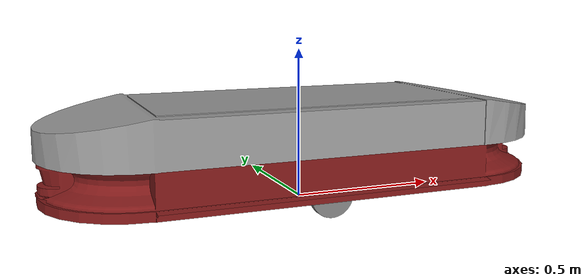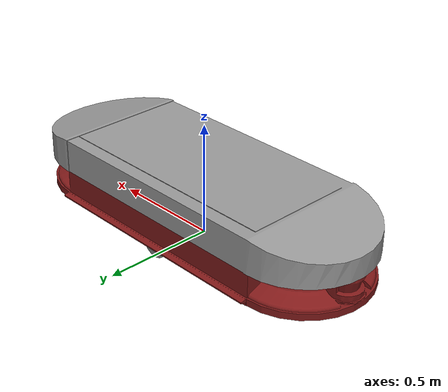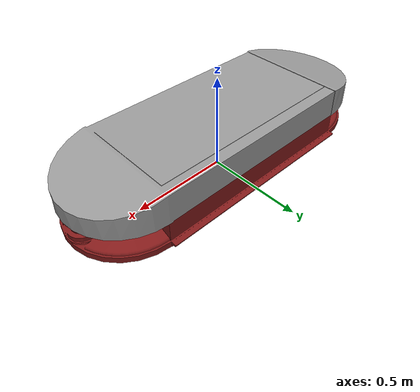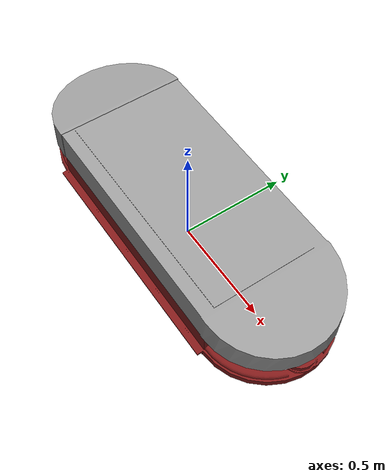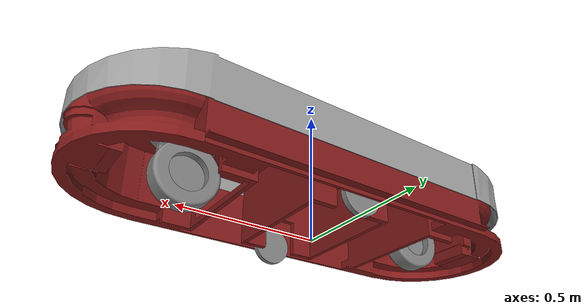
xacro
<?xml version="1.0"?>
<robot name="agvs" xmlns:xacro="http://www.ros.org/wiki/xacro">

  <!-- Import all Gazebo-customization elements, including Gazebo colors -->
  <xacro:include filename="$(find agvs_description)/urdf/agvs.gazebo" />

  <!-- Robot mechanical and motor parameters -->
  <xacro:property name="PI" value="3.1415926535897931"/>
  <xacro:property name="wheel_offset_x" value="0.479" />    <!-- x,y,z in base_footprint CS -->
  <xacro:property name="wheel_offset_y" value="0.0" />
  <xacro:property name="wheel_offset_z" value="0.110" />
  <xacro:property name="wheel_joint_damping" value="1.0" />
  <xacro:property name="wheel_joint_friction" value="1.0" />
  <xacro:property name="wheel_joint_effort_limit" value="1000.0" />
  <xacro:property name="wheel_joint_velocity_limit" value="2000.0" />
  <xacro:property name="wheel_mechanical_reduction" value="1.0" />
  <xacro:property name="motor_wheel_offset_z" value="0.110" />
  <xacro:property name="side_wheel_offset_y" value="0.267" />
  <xacro:property name="side_wheel_offset_z" value="0.070" />
  <xacro:property name="side_wheel_joint_damping" value="1.0" />
  <xacro:property name="side_wheel_joint_friction" value="1.0" />
  <!-- xacro:property name="side_wheel_offset_z" value="0.075" / -->

  <xacro:property name="steer_joint_damping" value="2.0" />
  <xacro:property name="steer_joint_friction" value="1.0" />
  <xacro:property name="steer_joint_effort_limit" value="100.0" />
  <xacro:property name="steer_joint_velocity_limit" value="100.0" />
  <xacro:property name="motor_wheel_mechanical_reduction" value="100.0" />

  <!-- Used for fixing robot to Gazebo 'base_link' -->

  <!-- BASE FOOTPRINT -->
  <!-- base_footprint is a fictitious link(frame) that is on the ground right below base_link origin,
             navigation stack depends on this frame -->
  <link name="base_footprint">
      <visual>
          <origin xyz="0 0 0" rpy="0 0 0" />
          <geometry>
             <box size="0.001 0.001 0.001" />
          </geometry>
      </visual>

  </link>

  <joint name="base_footprint_joint" type="fixed">
     <!-- NB While you would think this would make it go up, it is oddly reversed.
      This moves the joint to 0,0,0 where we want it for rviz, etc. -->
     <!-- origin xyz="0 0 -0.005" rpy="0 0 0" / -->
     <origin xyz="0 0 -0.005" rpy="0 0 0" />
     <parent link="base_footprint"/>
     <child link="base_link" />
  </joint>

  <!-- BASE_LINK (RED) -->
  <link name="base_link">
    <inertial>
      <mass value="225.0" />
      <origin xyz="0 0 0" />
      <inertia  ixx="5.0" ixy="0.0"  ixz="0.0"  iyy="5.0"  iyz="0.0"  izz="5.0" />
    </inertial>
    <visual>
       <origin xyz="0 0 0" rpy="0 0 0" />
       <geometry>
	     <mesh filename="package://agvs_description/meshes/chassis_agvs.dae"/>
       </geometry>
	   <material name="red">
	     <color rgba="0.5 0.1 0.1 1"/>
       </material>
    </visual>
    <collision>
       <origin xyz="0 0 0" rpy="0 0 0 " />
       <geometry>
         <mesh filename="package://agvs_description/meshes/chassis_agvs.dae"/>
       </geometry>
    </collision>
  </link>

  <!-- BACK MOTOR WHEEL (GREY) -->
  <link name="back_motor_wheel">
    <inertial>
      <mass value="10" />
      <origin xyz="0 0 0" />
      <inertia  ixx="0.01" ixy="0.0"  ixz="0.0"  iyy="0.01"  iyz="0.0"  izz="0.01" />
    </inertial>

    <visual>
       <origin xyz="0 0 0" rpy="0 0 0" />
       <geometry>
	      <mesh filename="package://agvs_description/meshes/motor_wheel.dae" scale="1.0 1.0 1.0"/>
       </geometry>
	   <material name="grey">
	   <color rgba="0.5 0.5 0.5 1"/>
       </material>
    </visual>
    <collision>
       <origin xyz="0 0 0" rpy="0 0 0" />
       <geometry>
	       <mesh filename="package://agvs_description/meshes/motor_wheel.dae" scale="1.0 1.0 1.0"/>
       </geometry>
    </collision>
  </link>

  <joint name="joint_back_motor_wheel" type="continuous">
    <parent link="base_link"/>
    <child link="back_motor_wheel"/>
    <origin xyz="-${wheel_offset_x} ${wheel_offset_y} ${motor_wheel_offset_z}" rpy="0 0 0" />
    <axis xyz="0 0 1" rpy="0 0 0" />
    <limit effort="${steer_joint_effort_limit}" velocity="${steer_joint_velocity_limit}" lower="-1.5708" upper="1.5708"/>
    <joint_properties damping="${steer_joint_damping}" friction="{steer_joint_friction}"/>
  </joint>

  <transmission name="joint_bmw_trans">
	 <type>transmission_interface/SimpleTransmission</type>
     <joint name="joint_back_motor_wheel" />
     <actuator name="joint_bmw_motor">
	    <hardwareInterface>EffortJointInterface</hardwareInterface>
        <mechanicalReduction>${motor_wheel_mechanical_reduction}</mechanicalReduction>
     </actuator>
  </transmission>

  <!-- BACK WHEEL (GREY) -->
  <link name="back_wheel">
    <inertial>
      <mass value="1.250" />
      <origin xyz="0 0 0" />
      <inertia  ixx="0.0109375" ixy="0.0"  ixz="0.0"  iyy="0.021125"  iyz="0.0"  izz="0.0109375" />
    </inertial>
    <visual>
       <origin xyz="0 0 0" rpy="0 0 0" />
       <geometry>
	     <mesh filename="package://agvs_description/meshes/agvs_wheel.dae" scale="1.0 1.0 1.0"/>
       </geometry>
	    <material name="grey">
		   <color rgba="0.5 0.5 0.5 1"/>
      	</material>
    </visual>
    <collision>
       <origin xyz="0 0 0" rpy="0 0 0" />
       <geometry>
	   <mesh filename="package://agvs_description/meshes/agvs_wheel.dae" scale="1.0 1.0 1.0"/>
       </geometry>
    </collision>
  </link>

  <joint name="joint_back_wheel" type="continuous">
    <parent link="back_motor_wheel"/>
    <child link="back_wheel"/>
    <origin xyz="0 0 0" rpy="0 0 3.1416" />
    <axis xyz="0 1 0" rpy="0 0 0" />
    <limit effort="${wheel_joint_effort_limit}" velocity="${wheel_joint_velocity_limit}"/>
    <joint_properties damping="${wheel_joint_damping}" friction="{wheel_joint_friction}"/>
  </joint>

  <transmission name="joint_bw_trans">
	 <type>transmission_interface/SimpleTransmission</type>
     <joint name="joint_back_wheel" />
     <actuator name="joint_bw_motor">
	   <hardwareInterface>VelocityJointInterface</hardwareInterface>
       <mechanicalReduction>${wheel_mechanical_reduction}</mechanicalReduction>
     </actuator>
  </transmission>

  <!-- FRONT MOTOR WHEEL (GREY) -->
  <link name="front_motor_wheel">
    <inertial>
      <mass value="10.0" />
      <origin xyz="0 0 0" />
      <inertia  ixx="0.01" ixy="0.0"  ixz="0.0"  iyy="0.01"  iyz="0.0"  izz="0.01" />
    </inertial>
    <visual>
       <origin xyz="0 0 0" rpy="0 0 0" />
       <geometry>
	 <mesh filename="package://agvs_description/meshes/motor_wheel.dae" scale="1.0 1.0 1.0"/>
       </geometry>
	<material name="grey">
		<color rgba="0.5 0.5 0.5 1"/>
      	</material>
    </visual>
    <collision>
       <origin xyz="0 0 0" rpy="0 0 0" />
       <geometry>
	      <mesh filename="package://agvs_description/meshes/motor_wheel.dae" scale="1.0 1.0 1.0"/>
       </geometry>
    </collision>
  </link>

  <joint name="joint_front_motor_wheel" type="continuous">
    <parent link="base_link"/>
    <child link="front_motor_wheel"/>
    <origin xyz="${wheel_offset_x} ${wheel_offset_y} ${motor_wheel_offset_z}" rpy="0 0 0" />
    <axis xyz="0 0 1" rpy="0 0 0" />
    <limit effort="${steer_joint_effort_limit}" velocity="${steer_joint_velocity_limit}" lower="-1.5708" upper="1.5708"/>
    <joint_properties damping="${steer_joint_damping}" friction="{steer_joint_friction}"/>
  </joint>

  <transmission name="joint_fmw_trans">
	 <type>transmission_interface/SimpleTransmission</type>
     <joint name="joint_front_motor_wheel" />
     <actuator name="joint_fmw_motor">
	   <hardwareInterface>EffortJointInterface</hardwareInterface>
       <mechanicalReduction>${motor_wheel_mechanical_reduction}</mechanicalReduction>
     </actuator>
  </transmission>

  <!-- FRONT WHEEL (GREY) -->
  <link name="front_wheel">
    <inertial>
      <mass value="1.250" />
      <origin xyz="0 0 0" />
      <inertia  ixx="0.0109375" ixy="0.0"  ixz="0.0"  iyy="0.021125"  iyz="0.0"  izz="0.0109375" />
    </inertial>
    <visual>
       <origin xyz="0 0 0" rpy="0 0 0" />
       <geometry>
	 <mesh filename="package://agvs_description/meshes/agvs_wheel.dae" scale="1.0 1.0 1.0"/>
       </geometry>
	<material name="grey">
		<color rgba="0.5 0.5 0.5 1"/>
      	</material>
    </visual>
    <collision>
       <origin xyz="0 0 0" rpy="0 0 0" />
       <geometry>
	   <mesh filename="package://agvs_description/meshes/agvs_wheel.dae" scale="1.0 1.0 1.0"/>
       </geometry>
    </collision>
  </link>

  <joint name="joint_front_wheel" type="continuous">
    <parent link="front_motor_wheel"/>
    <child link="front_wheel"/>
    <origin xyz="0 0 0" rpy="0 0 3.1416" />
    <axis xyz="0 1 0" rpy="0 0 0" />
    <limit effort="${wheel_joint_effort_limit}" velocity="${wheel_joint_velocity_limit}"/>
    <joint_properties damping="${wheel_joint_damping}" friction="{wheel_joint_friction}"/>
  </joint>

  <transmission name="joint_fw_trans">
	 <type>transmission_interface/SimpleTransmission</type>
     <joint name="joint_front_wheel" />
     <actuator name="joint_fw_motor">
	   <hardwareInterface>VelocityJointInterface</hardwareInterface>
       <mechanicalReduction>${wheel_mechanical_reduction}</mechanicalReduction>
     </actuator>
  </transmission>

  <!-- SIDE WHEEL LEFT (GREY) -->
  <link name="side_wheel_left">
    <inertial>
      <mass value="1.250" />
      <origin xyz="0 0 0" />
      <inertia  ixx="0.0109375" ixy="0.0"  ixz="0.0"  iyy="0.021125"  iyz="0.0"  izz="0.0109375" />
    </inertial>
    <visual>
       <origin xyz="0 0 0" rpy="0 0 0" />
       <geometry>
	      <mesh filename="package://agvs_description/meshes/side_wheel_agvs.dae" scale="1.0 1.0 1.0"/>
       </geometry>
	   <material name="grey">
	   <color rgba="0.5 0.5 0.5 1"/>
       </material>
    </visual>
    <collision>
       <origin xyz="0 0 0" rpy="0 0 0" />
       <geometry>
	       <mesh filename="package://agvs_description/meshes/side_wheel_agvs.dae" scale="1.0 1.0 1.0"/>
       </geometry>
    </collision>
  </link>

  <joint name="joint_side_wheel_left" type="continuous">
    <parent link="base_link"/>
    <child link="side_wheel_left"/>
    <origin xyz="0 ${side_wheel_offset_y} ${side_wheel_offset_z}" rpy="0 0 0" />
    <axis xyz="0 1 0" rpy="0 0 0" />
    <limit effort="${wheel_joint_effort_limit}" velocity="${wheel_joint_velocity_limit}"/>
    <joint_properties damping="${side_wheel_joint_damping}" friction="{side_wheel_joint_friction}"/>
  </joint>

  <transmission name="joint_swl_trans">
	 <type>transmission_interface/SimpleTransmission</type>
     <joint name="joint_side_wheel_left" />
     <actuator name="joint_swl_motor">
	   <hardwareInterface>EffortJointInterface</hardwareInterface>
       <mechanicalReduction>${wheel_mechanical_reduction}</mechanicalReduction>
     </actuator>
  </transmission>

  <!-- SIDE WHEEL RIGHT (GREY) -->
  <link name="side_wheel_right">
    <inertial>
      <mass value="1.250" />
      <origin xyz="0 0 0" />
      <inertia  ixx="0.0109375" ixy="0.0"  ixz="0.0"  iyy="0.021125"  iyz="0.0"  izz="0.0109375" />
    </inertial>
    <visual>
       <origin xyz="0 0 0" rpy="0 0 0" />
       <geometry>
	      <mesh filename="package://agvs_description/meshes/side_wheel_agvs.dae" scale="1.0 1.0 1.0"/>
       </geometry>
	   <material name="grey">
	   <color rgba="0.5 0.5 0.5 1"/>
       </material>
    </visual>
    <collision>
       <origin xyz="0 0 0" rpy="0 0 0" />
       <geometry>
	       <mesh filename="package://agvs_description/meshes/side_wheel_agvs.dae" scale="1.0 1.0 1.0"/>
       </geometry>
    </collision>
  </link>

  <joint name="joint_side_wheel_right" type="continuous">
    <parent link="base_link"/>
    <child link="side_wheel_right"/>
    <origin xyz="0 -${side_wheel_offset_y} ${side_wheel_offset_z}" rpy="0 0 0" />
    <axis xyz="0 1 0" rpy="0 0 0" />
    <limit effort="${wheel_joint_effort_limit}" velocity="${wheel_joint_velocity_limit}"/>
    <joint_properties damping="${side_wheel_joint_damping}" friction="{side_wheel_joint_friction}"/>
  </joint>

  <transmission name="joint_swr_trans">
	 <type>transmission_interface/SimpleTransmission</type>
     <joint name="joint_side_wheel_right" />
     <actuator name="joint_swr_motor">
	   <hardwareInterface>EffortJointInterface</hardwareInterface>
       <mechanicalReduction>${wheel_mechanical_reduction}</mechanicalReduction>
     </actuator>
  </transmission>

  <link name="elevator_link">
    <inertial>
      <mass value="20.0" />
      <origin xyz="0 0 0" />
      <inertia  ixx="0.2185" ixy="0.0"  ixz="-0.001"  iyy="0.33677"  iyz="0.0"  izz="0.20511" />
    </inertial>
    <visual>
       <origin xyz="0 0 0" rpy="0 0 0" />
       <geometry>
	   <mesh filename="package://agvs_description/meshes/agvs_top.dae"/>
       </geometry>
    </visual>
    <collision>
       <origin xyz="0 0 0" rpy="0 0 0 " />
       <geometry>
       <mesh filename="package://agvs_description/meshes/agvs_top.dae"/>
       </geometry>
    </collision>
  </link>

  <joint name="elevator_joint" type="prismatic">
    <parent link="base_link"/>
    <child link="elevator_link"/>
    <limit effort="5000.0" velocity="0.01" lower="0.0" upper="0.050"/>
    <origin rpy="0 0 0" xyz="0 0 0"/>
    <axis xyz="0 0 1"/>
  </joint>

  <transmission name="joint_elevator_trans">
	 <type>transmission_interface/SimpleTransmission</type>
     <joint name="elevator_joint" />
     <actuator name="elevator_motor">
		<hardwareInterface>EffortJointInterface</hardwareInterface>
		<mechanicalReduction>1000.0</mechanicalReduction>
	 </actuator>
  </transmission>

  <!-- SICK SENSORS -->
  <!-- Sick Laser Front -->
  <joint name="joint_laser_front" type="fixed">
     <axis xyz="0 1 0" />
     <origin xyz="0.772 0.0 0.140"/>
     <parent link="base_link"/>
     <child link="laser_front"/>
  </joint>
  <link name="laser_front">
  </link>

  <!-- Sick Laser Back -->
  <joint name="joint_laser_back" type="fixed">
     <axis xyz="0 1 0"/>
     <origin xyz="-0.772 0.0 0.140" rpy="0 0 3.1416"/>
     <parent link="base_link"/>
     <child link="laser_back"/>
  </joint>
  <link name="laser_back">
  </link>

  <!-- IMU SENSOR -->
  <joint name="imu_joint" type="fixed">
      <axis xyz="1 0 0"/>
      <origin xyz="0 0 0.2825"/>
      <parent link="base_link"/>
      <child link="imu_link"/>
  </joint>

  <link name="imu_link">
      <inertial>
        <mass value="0.001"/>
        <origin rpy="0 0 0" xyz="0 0 0"/>
        <inertia ixx="0.0001" ixy="0" ixz="0" iyy="0.000001" iyz="0" izz="0.0001"/>
      </inertial>
      <visual>
        <origin rpy="0 0 0" xyz="0 0 0"/>
        <geometry>
          <box size="0.001 0.001 0.001"/>
        </geometry>
      </visual>
      <collision>
        <origin rpy="0 0 0" xyz="0 0 0"/>
        <geometry>
          <box size=".001 .001 .001"/>
        </geometry>
      </collision>
  </link>

</robot>
